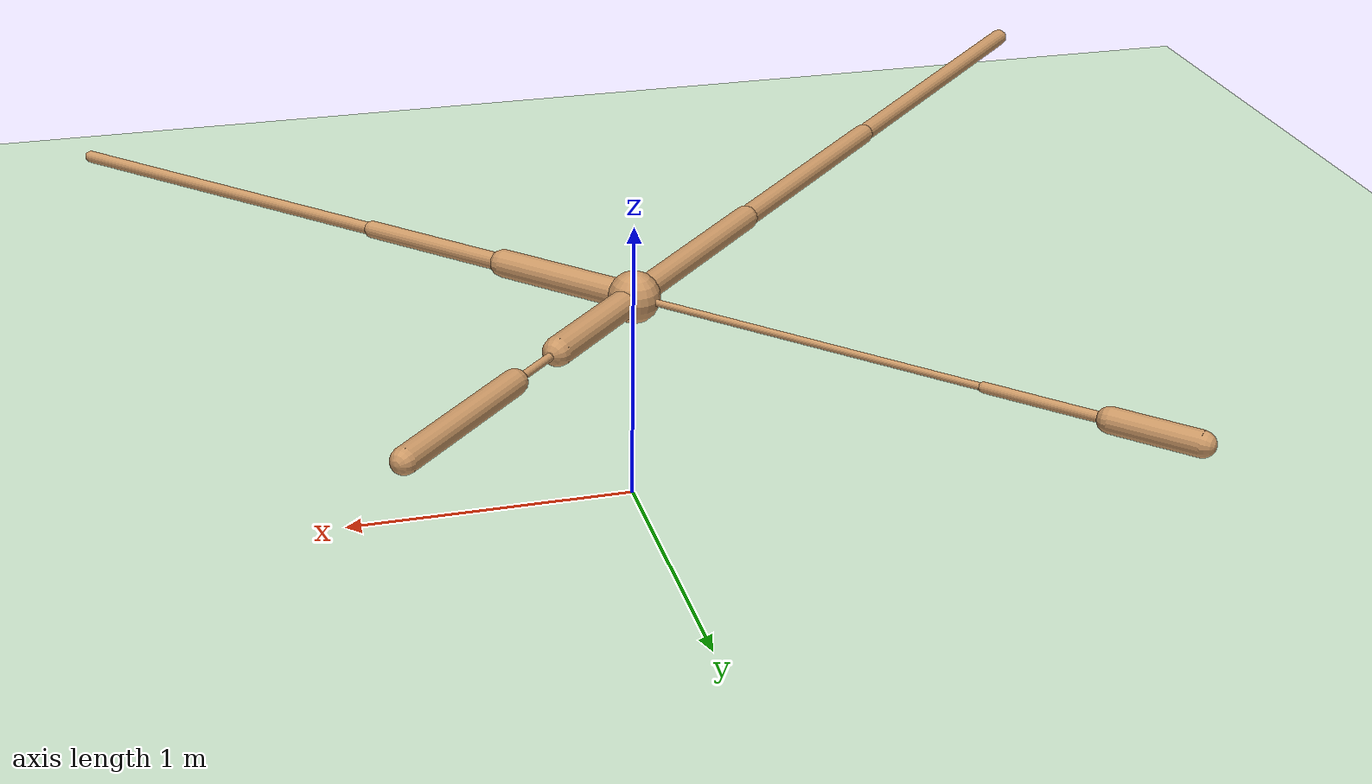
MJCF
<mujoco model="ant">
  <compiler angle="degree" coordinate="local" inertiafromgeom="true" />
  <option integrator="RK4" timestep="0.01" />
  <custom>
    <numeric data="0.0 0.0 0.55 1.0 0.0 0.0 0.0 0.0 1.0 0.0 -1.0 0.0 -1.0 0.0 1.0" name="init_qpos" />
  </custom>
  <default>
    <joint armature="1" damping="1" limited="true" />
    <geom conaffinity="0" condim="3" density="5.0" friction="1 0.5 0.5" margin="0.01" rgba="0.8 0.6 0.4 1" />
  </default>
  <asset>
    <texture builtin="gradient" height="100" rgb1="1 1 1" rgb2="0 0 0" type="skybox" width="100" />
    <texture builtin="flat" height="1278" mark="cross" markrgb="1 1 1" name="texgeom" random="0.01" rgb1="0.8 0.6 0.4" rgb2="0.8 0.6 0.4" type="cube" width="127" />
    <texture builtin="checker" height="100" name="texplane" rgb1="0 0 0" rgb2="0.8 0.8 0.8" type="2d" width="100" />
    <material name="MatPlane" reflectance="0.5" shininess="1" specular="1" texrepeat="60 60" texture="texplane" />
    <material name="geom" texture="texgeom" texuniform="true" />
  </asset>
  <worldbody>
    <light cutoff="100" diffuse="1 1 1" dir="-0 0 -1.3" directional="true" exponent="1" pos="0 0 1.3" specular=".1 .1 .1" />
    <geom conaffinity="1" condim="3" material="MatPlane" name="floor" pos="0 0 0" rgba="0.8 0.9 0.8 1" size="40 40 40" type="plane" />
    <body name="torso" pos="0 0 0.75">
      <camera name="track" mode="trackcom" pos="0 -11 5" xyaxes="1 0 0 0 0.5 1" />
      <geom name="torso_geom" pos="0 0 0" size="0.08906605839729309" type="sphere" />
      <joint armature="0" damping="0" limited="false" margin="0.01" name="root" pos="0 0 0" type="free" />
      <body name="front_left_leg" pos="0 0 0">
        <geom fromto="0 0 0 0.33538317680358887 0.33538317680358887 0" name="aux_1_geom" size="0.04962228611111641" type="capsule" />
        <body name="aux_1" pos="0.33538317680358887 0.33538317680358887 0">
          <joint axis="0 0 1" name="hip_1" pos="0.0 0.0 0.0" range="-30 30" type="hinge" />
          <geom fromto="0 0 0 0.17574679851531982 0.17574679851531982 0" name="left_leg_geom" size="0.01394125260412693" type="capsule" />
          <body name="left_leg_geom_aux" pos="0.17574679851531982 0.17574679851531982 0">
            <joint axis="-1 1 0" name="ankle_1" pos="0.0 0.0 0.0" range="30 70" type="hinge" />
            <geom fromto="0 0 0 0.4095107913017273 0.4095107913017273 0" name="left_ankle_geom" size="0.043713461607694626" type="capsule" />
          </body>
        </body>
      </body>
      <body name="front_right_leg" pos="0 0 0">
        <geom fromto="0 0 0 -0.8835640549659729 0.8835640549659729 0" name="aux_2_geom" size="0.01197350025177002" type="capsule" />
        <body name="aux_2" pos="-0.8835640549659729 0.8835640549659729 0">
          <joint axis="0 0 1" name="hip_2" pos="0.0 0.0 0.0" range="-30 30" type="hinge" />
          <geom fromto="0 0 0 -0.28698036074638367 0.28698036074638367 0" name="right_leg_geom" size="0.017591454088687897" type="capsule" />
          <body name="right_leg_geom_aux" pos="-0.28698036074638367 0.28698036074638367 0">
            <joint axis="1 1 0" name="ankle_2" pos="0.0 0.0 0.0" range="-70 -30" type="hinge" />
            <geom fromto="0 0 0 -0.2014968991279602 0.2014968991279602 0" name="right_ankle_geom" size="0.0420360267162323" type="capsule" />
          </body>
        </body>
      </body>
      <body name="back_leg" pos="0 0 0">
        <geom fromto="0 0 0 -0.550878643989563 -0.550878643989563 0" name="aux_3_geom" size="0.04408954828977585" type="capsule" />
        <body name="aux_3" pos="-0.550878643989563 -0.550878643989563 0">
          <joint axis="0 0 1" name="hip_3" pos="0.0 0.0 0.0" range="-30 30" type="hinge" />
          <geom fromto="0 0 0 -0.684181272983551 -0.684181272983551 0" name="back_leg_geom" size="0.037968359887599945" type="capsule" />
          <body name="back_leg_geom_aux" pos="-0.684181272983551 -0.684181272983551 0">
            <joint axis="-1 1 0" name="ankle_3" pos="0.0 0.0 0.0" range="-70 -30" type="hinge" />
            <geom fromto="0 0 0 -0.9601023197174072 -0.9601023197174072 0" name="third_ankle_geom" size="0.03333576023578644" type="capsule" />
          </body>
        </body>
      </body>
      <body name="right_back_leg" pos="0 0 0">
        <geom fromto="0 0 0 0.3678790330886841 -0.3678790330886841 0" name="aux_4_geom" size="0.04822394996881485" type="capsule" />
        <body name="aux_4" pos="0.3678790330886841 -0.3678790330886841 0">
          <joint axis="0 0 1" name="hip_4" pos="0.0 0.0 0.0" range="-30 30" type="hinge" />
          <geom fromto="0 0 0 0.39400771260261536 -0.39400771260261536 0" name="rightback_leg_geom" size="0.030229464173316956" type="capsule" />
          <body name="rightback_leg_geom_aux" pos="0.39400771260261536 -0.39400771260261536 0">
            <joint axis="1 1 0" name="ankle_4" pos="0.0 0.0 0.0" range="30 70" type="hinge" />
            <geom fromto="0 0 0 0.9413875341415405 -0.9413875341415405 0" name="fourth_ankle_geom" size="0.02172989398241043" type="capsule" />
          </body>
        </body>
      </body>
    </body>
  </worldbody>
  <actuator>
    <motor ctrllimited="true" ctrlrange="-1.0 1.0" joint="hip_4" gear="150" />
    <motor ctrllimited="true" ctrlrange="-1.0 1.0" joint="ankle_4" gear="150" />
    <motor ctrllimited="true" ctrlrange="-1.0 1.0" joint="hip_1" gear="150" />
    <motor ctrllimited="true" ctrlrange="-1.0 1.0" joint="ankle_1" gear="150" />
    <motor ctrllimited="true" ctrlrange="-1.0 1.0" joint="hip_2" gear="150" />
    <motor ctrllimited="true" ctrlrange="-1.0 1.0" joint="ankle_2" gear="150" />
    <motor ctrllimited="true" ctrlrange="-1.0 1.0" joint="hip_3" gear="150" />
    <motor ctrllimited="true" ctrlrange="-1.0 1.0" joint="ankle_3" gear="150" />
  </actuator>
</mujoco>
